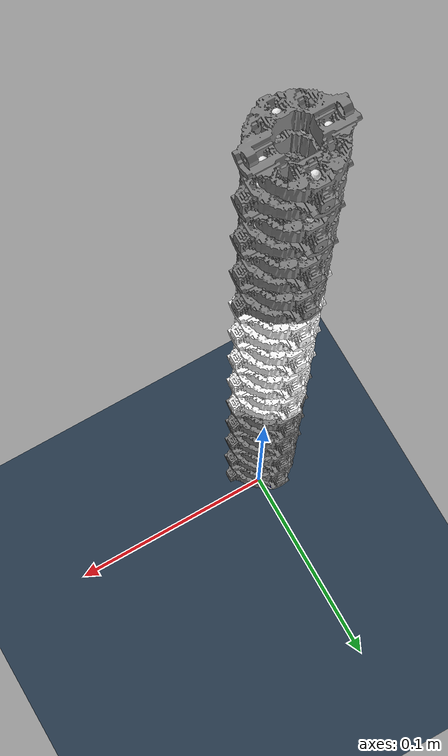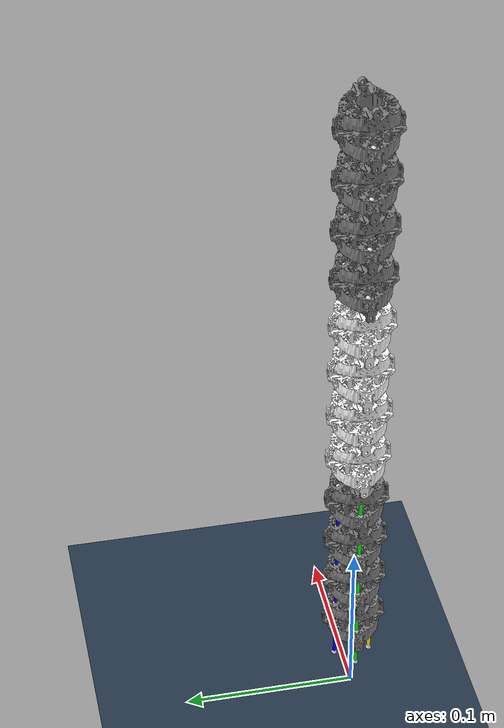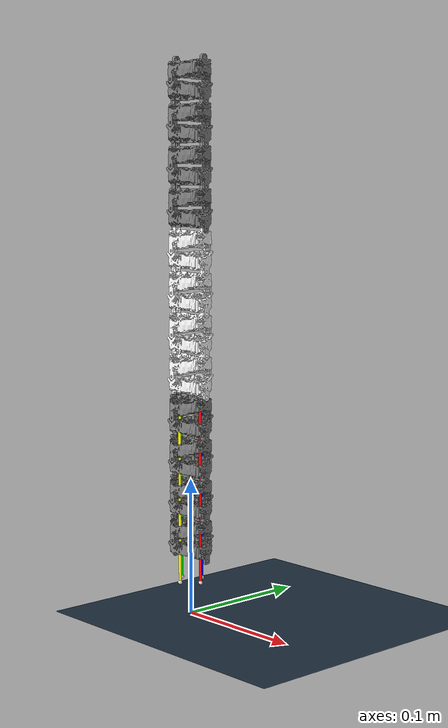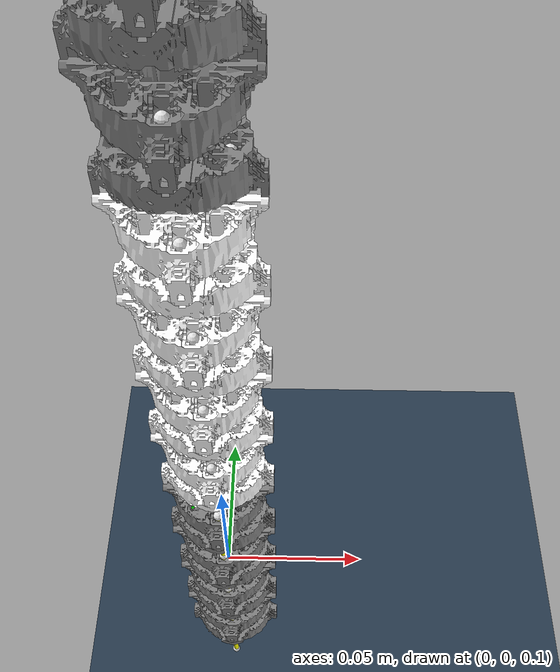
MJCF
<?xml version="1.0"?>
<mujoco model="continuum_robot">
    <compiler angle="degree" coordinate="local"/>
    <option integrator="Euler"/>

    <extension>
        <plugin plugin="mujoco.elasticity.cable"/>
    </extension>

    <compiler autolimits="true"/>

    <default>
        <joint limited="true" range="-35 35" stiffness="0.04" damping="0.01" armature="0.0001"/>
        <site rgba=".9 .9 .9 1" size="0.001625 0.001625 0.001625"/>
        <!-- STL(시각용) 공통 속성: 충돌 off -->
        <default class="comp">
            <geom contype="1" conaffinity="1"/>
        </default>
    </default>

    <asset>
        <!-- STL 로드 -->
        <mesh name="mesh_component2" file="meshes/mesh_component2.stl" scale="0.001 0.001 0.001"/>
        <!-- 환경(Plane) 로드 -->
        <texture name="texplane" type="2d" builtin="checker" rgb1=".2 .3 .4" rgb2=".1 0.15 0.2" width="512" height="512" mark="cross" markrgb=".8 .8 .8"/>
        <material name="matplane" reflectance="0.3" texture="texplane" texrepeat="1 1" texuniform="true"/>
    </asset>

    <worldbody>
        <!-- 조명 설정 -->
        <light directional="true" diffuse=".4 .4 .4" specular="0.1 0.1 0.1" pos="0 0 5.0" dir="0 0 -1" castshadow="false"/>
        <light directional="true" diffuse=".6 .6 .6" specular="0.2 0.2 0.2" pos="0 0 4" dir="0 0 -1"/>
        <!-- Plane 설정 -->
        <geom name="ground" type="plane" size="0 0 1" pos="0 0 0" quat="1 0 0 0" material="matplane" condim="1"/>

        <body name="base" pos="0 0 0">
            <joint name="base_slide" type="slide" axis="0 0 1" range="-0.01 0.01"/>
            <geom type="sphere" size="0.001" density="1000" rgba="0 0 0 0" contype="0" conaffinity="0"/>
            <site name="anchor_1" pos=" 0.0105  0      0.025"/>
            <site name="anchor_2" pos="-0.0105  0      0.025"/>
            <site name="anchor_3" pos=" 0       0.0105 0.025"/>
            <site name="anchor_4" pos=" 0      -0.0105 0.025"/>
        </body>

    <!-- ===================== Segment 1 ===================== -->
        <body name="comp_root" pos="0 0 0.05" quat="1 0 0 0">
            <geom name="geom_comp_root" class="comp" type="mesh" mesh="mesh_component2" pos="0 0 0"/>
            <joint name="rotation_root" type="hinge" axis="1 0 0" pos="0.01794 0 -0.0075"/>
            <site name="s1_1" pos="0.0105 0 0"/>
            <site name="s1_2" pos="-0.0105 0 0"/>
            <site name="s1_3" pos="0 0.0105 0"/>
            <site name="s1_4" pos="0 -0.0105 0"/>

            <body name="comp_1" pos="0 0 0.015" quat="0.70710678 0 0 -0.70710678">
                <joint name="rotation_1" type="hinge" axis="1 0 0" pos="0.01794 0 -0.0075"/>
                <!--joint axis: 이 조인트가 어느 방향으로 움직이는지, pos: 조인트의 앵커(회전/이동이 일어나는 점) 위치-->
                <geom name="geom_comp_1" class="comp" type="mesh" mesh="mesh_component2" pos="0 0 0" quat="1 0 0 0"/>
                <site name="s2_1" pos="0.0105 0 0"/>
                <site name="s2_2" pos="-0.0105 0 0"/>
                <site name="s2_3" pos="0 0.0105 0"/>
                <site name="s2_4" pos="0 -0.0105 0"/>

                <body name="comp_2" pos="0 0 0.015" quat="0.70710678 0 0 0.70710678">
                    <joint name="rotation_2" type="hinge" axis="1 0 0" pos="0.01794 0 -0.0075"/>
                    <geom name="geom_comp_2" class="comp" type="mesh" mesh="mesh_component2" pos="0 0 0" quat="1 0 0 0"/>
                    <site name="s3_1" pos="0.0105 0 0"/>
                    <site name="s3_2" pos="-0.0105 0 0"/>
                    <site name="s3_3" pos="0 0.0105 0"/>
                    <site name="s3_4" pos="0 -0.0105 0"/>

                    <body name="comp_3" pos="0 0 0.015" quat="0.70710678 0 0 -0.70710678">
                        <joint name="rotation_3" type="hinge" axis="1 0 0" pos="0.01794 0 -0.0075"/>
                        <geom name="geom_comp_3" class="comp" type="mesh" mesh="mesh_component2" pos="0 0 0" quat="1 0 0 0"/>
                        <site name="s4_1" pos="0.0105 0 0"/>
                        <site name="s4_2" pos="-0.0105 0 0"/>
                        <site name="s4_3" pos="0 0.0105 0"/>
                        <site name="s4_4" pos="0 -0.0105 0"/>

                        <body name="comp_4" pos="0 0 0.015" quat="0.70710678 0 0 0.70710678">
                            <joint name="rotation_4" type="hinge" axis="1 0 0" pos="0.01794 0 -0.0075"/>
                            <geom name="geom_comp_4" class="comp" type="mesh" mesh="mesh_component2" pos="0 0 0" quat="1 0 0 0"/>
                            <site name="s5_1" pos="0.0105 0 0"/>
                            <site name="s5_2" pos="-0.0105 0 0"/>
                            <site name="s5_3" pos="0 0.0105 0"/>
                            <site name="s5_4" pos="0 -0.0105 0"/>

                            <body name="comp_5" pos="0 0 0.015" quat="0.70710678 0 0 -0.70710678">
                                <joint name="rotation_5" type="hinge" axis="1 0 0" pos="0.01794 0 -0.0075"/>
                                <geom name="geom_comp_5" class="comp" type="mesh" mesh="mesh_component2" pos="0 0 0" quat="1 0 0 0"/>
                                <site name="s6_1" pos="0.0105 0 0"/>
                                <site name="s6_2" pos="-0.0105 0 0"/>
                                <site name="s6_3" pos="0 0.0105 0"/>
                                <site name="s6_4" pos="0 -0.0105 0"/>

                                <body name="comp_6" pos="0 0 0.015" quat="0.70710678 0 0 0.70710678">
                                    <joint name="rotation_6" type="hinge" axis="1 0 0" pos="0.01794 0 -0.0075"/>
                                    <geom name="geom_comp_6" class="comp" type="mesh" mesh="mesh_component2" pos="0 0 0" quat="1 0 0 0"/>
                                    <site name="s7_1" pos="0.0105 0 0"/>
                                    <site name="s7_2" pos="-0.0105 0 0"/>
                                    <site name="s7_3" pos="0 0.0105 0"/>
                                    <site name="s7_4" pos="0 -0.0105 0"/>

                                    <body name="comp_7" pos="0 0 0.015" quat="0.70710678 0 0 -0.70710678">
                                        <joint name="rotation_7" type="hinge" axis="1 0 0" pos="0.01794 0 -0.0075"/>
                                        <geom name="geom_comp_7" class="comp" type="mesh" mesh="mesh_component2" pos="0 0 0" quat="1 0 0 0"/>
                                        <site name="s8_1" pos="0.0105 0 0"/>
                                        <site name="s8_2" pos="-0.0105 0 0"/>
                                        <site name="s8_3" pos="0 0.0105 0"/>
                                        <site name="s8_4" pos="0 -0.0105 0"/>
                                        <site name="seg1_imu" pos="0 0 0"/>
                                    <!-- =============================== Segment 2 =============================== -->
                                        <body name="seg2_1" pos="0 0 0.015" quat="0.70710678 0 0 -0.70710678">
                                            <geom name="seg2_comp_1" class="comp" type="mesh" mesh="mesh_component2" pos="0 0 0" quat="1 0 0 0" rgba="1 1 1 1"/>
                                            <joint name="seg2_rotation_1" type="hinge" axis="1 0 0" pos="0.01794 0 -0.0075"/>
                                            <site name="2s1_1" pos="0.0105 0 0"/>
                                            <site name="2s1_2" pos="-0.0105 0 0"/>
                                            <site name="2s1_3" pos="0 0.0105 0"/>
                                            <site name="2s1_4" pos="0 -0.0105 0"/>

                                            <body name="seg2_2" pos="0 0 0.015" quat="0.70710678 0 0 0.70710678">
                                                <geom name="seg2_comp_2" class="comp" type="mesh" mesh="mesh_component2" pos="0 0 0" quat="1 0 0 0" rgba="1 1 1 1"/>
                                                <joint name="seg2_rotation_2" type="hinge" axis="1 0 0" pos="0.01794 0 -0.0075"/>
                                                <site name="2s2_1" pos="0.0105 0 0"/>
                                                <site name="2s2_2" pos="-0.0105 0 0"/>
                                                <site name="2s2_3" pos="0 0.0105 0"/>
                                                <site name="2s2_4" pos="0 -0.0105 0"/>

                                                <body name="seg2_3" pos="0 0 0.015" quat="0.70710678 0 0 -0.70710678">
                                                    <geom name="seg2_comp_3" class="comp" type="mesh" mesh="mesh_component2" pos="0 0 0" quat="1 0 0 0" rgba="1 1 1 1"/>
                                                    <joint name="seg2_rotation_3" type="hinge" axis="1 0 0" pos="0.01794 0 -0.0075"/>
                                                    <site name="2s3_1" pos="0.0105 0 0"/>
                                                    <site name="2s3_2" pos="-0.0105 0 0"/>
                                                    <site name="2s3_3" pos="0 0.0105 0"/>
                                                    <site name="2s3_4" pos="0 -0.0105 0"/>

                                                    <body name="seg2_4" pos="0 0 0.015" quat="0.70710678 0 0 0.70710678">
                                                        <geom name="seg2_comp_4" class="comp" type="mesh" mesh="mesh_component2" pos="0 0 0" quat="1 0 0 0" rgba="1 1 1 1"/>
                                                        <joint name="seg2_rotation_4" type="hinge" axis="1 0 0" pos="0.01794 0 -0.0075"/>
                                                        <site name="2s4_1" pos="0.0105 0 0"/>
                                                        <site name="2s4_2" pos="-0.0105 0 0"/>
                                                        <site name="2s4_3" pos="0 0.0105 0"/>
                                                        <site name="2s4_4" pos="0 -0.0105 0"/>

                                                        <body name="seg2_5" pos="0 0 0.015" quat="0.70710678 0 0 -0.70710678">
                                                            <geom name="seg2_comp_5" class="comp" type="mesh" mesh="mesh_component2" pos="0 0 0" quat="1 0 0 0" rgba="1 1 1 1"/>
                                                            <joint name="seg2_rotation_5" type="hinge" axis="1 0 0" pos="0.01794 0 -0.0075"/>
                                                            <site name="2s5_1" pos="0.0105 0 0"/>
                                                            <site name="2s5_2" pos="-0.0105 0 0"/>
                                                            <site name="2s5_3" pos="0 0.0105 0"/>
                                                            <site name="2s5_4" pos="0 -0.0105 0"/>

                                                            <body name="seg2_6" pos="0 0 0.015" quat="0.70710678 0 0 0.70710678">
                                                                <geom name="seg2_comp_6" class="comp" type="mesh" mesh="mesh_component2" pos="0 0 0" rgba="1 1 1 1"/>
                                                                <joint name="seg2_rotation_6" type="hinge" axis="1 0 0" pos="0.01794 0 -0.0075"/>
                                                                <site name="2s6_1" pos="0.0105 0 0"/>
                                                                <site name="2s6_2" pos="-0.0105 0 0"/>
                                                                <site name="2s6_3" pos="0 0.0105 0"/>
                                                                <site name="2s6_4" pos="0 -0.0105 0"/>

                                                                <body name="seg2_7" pos="0 0 0.015" quat="0.70710678 0 0 -0.70710678">
                                                                    <geom name="seg2_comp_7" class="comp" type="mesh" mesh="mesh_component2" pos="0 0 0" quat="1 0 0 0" rgba="1 1 1 1"/>
                                                                    <joint name="seg2_rotation_7" type="hinge" axis="1 0 0" pos="0.01794 0 -0.0075"/>
                                                                    <site name="2s7_1" pos="0.0105 0 0"/>
                                                                    <site name="2s7_2" pos="-0.0105 0 0"/>
                                                                    <site name="2s7_3" pos="0 0.0105 0"/>
                                                                    <site name="2s7_4" pos="0 -0.0105 0"/>

                                                                    <body name="seg2_8" pos="0 0 0.015" quat="0.70710678 0 0 0.70710678">
                                                                        <geom name="seg2_comp_8" class="comp" type="mesh" mesh="mesh_component2" pos="0 0 0" rgba="1 1 1 1"/>
                                                                        <joint name="seg2_rotation_8" type="hinge" axis="1 0 0" pos="0.01794 0 -0.0075"/>
                                                                        <site name="2s8_1" pos="0.0105 0 0"/>
                                                                        <site name="2s8_2" pos="-0.0105 0 0"/>
                                                                        <site name="2s8_3" pos="0 0.0105 0"/>
                                                                        <site name="2s8_4" pos="0 -0.0105 0"/>

                                                                    <!-- ===================== Segment 3 ===================== -->
                                                                        <body name="seg3_1" pos="0 0 0.015" quat="0.70710678 0 0 -0.70710678">
                                                                            <geom name="seg3_comp_1" class="comp" type="mesh" mesh="mesh_component2" pos="0 0 0" quat="1 0 0 0"/>
                                                                            <joint name="seg3_rotation_1" type="hinge" axis="1 0 0" pos="0.01794 0 -0.0075"/>
                                                                            <site name="3s1_1" pos="0.0105 0 0"/>
                                                                            <site name="3s1_2" pos="-0.0105 0 0"/>
                                                                            <site name="3s1_3" pos="0 0.0105 0"/>
                                                                            <site name="3s1_4" pos="0 -0.0105 0"/>

                                                                            <body name="seg3_2" pos="0 0 0.015" quat="0.70710678 0 0 0.70710678">
                                                                                <geom name="seg3_comp_2" class="comp" type="mesh" mesh="mesh_component2" pos="0 0 0" quat="1 0 0 0"/>
                                                                                <joint name="seg3_rotation_2" type="hinge" axis="1 0 0" pos="0.01794 0 -0.0075"/>
                                                                                <site name="3s2_1" pos="0.0105 0 0"/>
                                                                                <site name="3s2_2" pos="-0.0105 0 0"/>
                                                                                <site name="3s2_3" pos="0 0.0105 0"/>
                                                                                <site name="3s2_4" pos="0 -0.0105 0"/>

                                                                                <body name="seg3_3" pos="0 0 0.015" quat="0.70710678 0 0 -0.70710678">
                                                                                    <geom name="seg3_comp_3" class="comp" type="mesh" mesh="mesh_component2" pos="0 0 0" quat="1 0 0 0"/>
                                                                                    <joint name="seg3_rotation_3" type="hinge" axis="1 0 0" pos="0.01794 0 -0.0075"/>
                                                                                    <site name="3s3_1" pos="0.0105 0 0"/>
                                                                                    <site name="3s3_2" pos="-0.0105 0 0"/>
                                                                                    <site name="3s3_3" pos="0 0.0105 0"/>
                                                                                    <site name="3s3_4" pos="0 -0.0105 0"/>

                                                                                    <body name="seg3_4" pos="0 0 0.015" quat="0.70710678 0 0 0.70710678">
                                                                                        <geom name="seg3_comp_4" class="comp" type="mesh" mesh="mesh_component2" pos="0 0 0" quat="1 0 0 0"/>
                                                                                        <joint name="seg3_rotation_4" type="hinge" axis="1 0 0" pos="0.01794 0 -0.0075"/>
                                                                                        <site name="3s4_1" pos="0.0105 0 0"/>
                                                                                        <site name="3s4_2" pos="-0.0105 0 0"/>
                                                                                        <site name="3s4_3" pos="0 0.0105 0"/>
                                                                                        <site name="3s4_4" pos="0 -0.0105 0"/>

                                                                                        <body name="seg3_5" pos="0 0 0.015" quat="0.70710678 0 0 -0.70710678">
                                                                                            <geom name="seg3_comp_5" class="comp" type="mesh" mesh="mesh_component2" pos="0 0 0" quat="1 0 0 0"/>
                                                                                            <joint name="seg3_rotation_5" type="hinge" axis="1 0 0" pos="0.01794 0 -0.0075"/>
                                                                                            <site name="3s5_1" pos="0.0105 0 0"/>
                                                                                            <site name="3s5_2" pos="-0.0105 0 0"/>
                                                                                            <site name="3s5_3" pos="0 0.0105 0"/>
                                                                                            <site name="3s5_4" pos="0 -0.0105 0"/>

                                                                                            <body name="seg3_6" pos="0 0 0.015" quat="0.70710678 0 0 0.70710678">
                                                                                                <geom name="seg3_comp_6" class="comp" type="mesh" mesh="mesh_component2" pos="0 0 0"/>
                                                                                                <joint name="seg3_rotation_6" type="hinge" axis="1 0 0" pos="0.01794 0 -0.0075"/>
                                                                                                <site name="3s6_1" pos="0.0105 0 0"/>
                                                                                                <site name="3s6_2" pos="-0.0105 0 0"/>
                                                                                                <site name="3s6_3" pos="0 0.0105 0"/>
                                                                                                <site name="3s6_4" pos="0 -0.0105 0"/>

                                                                                                <body name="seg3_7" pos="0 0 0.015" quat="0.70710678 0 0 -0.70710678">
                                                                                                    <geom name="seg3_comp_7" class="comp" type="mesh" mesh="mesh_component2" pos="0 0 0" quat="1 0 0 0"/>
                                                                                                    <joint name="seg3_rotation_7" type="hinge" axis="1 0 0" pos="0.01794 0 -0.0075"/>
                                                                                                    <site name="3s7_1" pos="0.0105 0 0"/>
                                                                                                    <site name="3s7_2" pos="-0.0105 0 0"/>
                                                                                                    <site name="3s7_3" pos="0 0.0105 0"/>
                                                                                                    <site name="3s7_4" pos="0 -0.0105 0"/>

                                                                                                    <body name="seg3_8" pos="0 0 0.015" quat="0.70710678 0 0 0.70710678">
                                                                                                        <geom name="seg3_comp_8" class="comp" type="mesh" mesh="mesh_component2" pos="0 0 0"/>
                                                                                                        <joint name="seg3_rotation_8" type="hinge" axis="1 0 0" pos="0.01794 0 -0.0075"/>
                                                                                                        <site name="3s8_1" pos="0.0105 0 0"/>
                                                                                                        <site name="3s8_2" pos="-0.0105 0 0"/>
                                                                                                        <site name="3s8_3" pos="0 0.0105 0"/>
                                                                                                        <site name="3s8_4" pos="0 -0.0105 0"/>
                                                                                                    </body>
                                                                                                </body>
                                                                                            </body>
                                                                                        </body>
                                                                                    </body>
                                                                                </body>
                                                                            </body>
                                                                        </body>
                                                                    </body>
                                                                </body>
                                                            </body>
                                                        </body>
                                                    </body>
                                                </body>
                                            </body>
                                        </body>
                                    </body>
                                </body>
                            </body>
                        </body>
                    </body>
                </body>
            </body>
        </body>
    </worldbody>

    <tendon>
        <!-- ===================== Segment 1 ===================== -->
        <spatial name="tendon_1" width="0.0010" rgba="1 0 0 1" limited="true" range="0.0109 0.0111">
            <site site="anchor_1"/>
            <site site="s1_1"/>
            <site site="s2_3"/>
            <site site="s3_1"/>
            <site site="s4_3"/>
            <site site="s5_1"/>
            <site site="s6_3"/>
            <site site="s7_1"/>
            <site site="s8_3"/>
        </spatial>
        <spatial name="tendon_2" width="0.0010" rgba="0 1 0 1" limited="true" range="0.0109 0.0111">
            <site site="anchor_2"/>
            <site site="s1_2"/>
            <site site="s2_4"/>
            <site site="s3_2"/>
            <site site="s4_4"/>
            <site site="s5_2"/>
            <site site="s6_4"/>
            <site site="s7_2"/>
            <site site="s8_4"/>
        </spatial>
        <spatial name="tendon_3" width="0.0010" rgba="0 0 1 1" limited="true" range="0.0109 0.0111">
            <site site="anchor_3"/>
            <site site="s1_3"/>
            <site site="s2_2"/>
            <site site="s3_3"/>
            <site site="s4_2"/>
            <site site="s5_3"/>
            <site site="s6_2"/>
            <site site="s7_3"/>
            <site site="s8_2"/>
        </spatial>
        <spatial name="tendon_4" width="0.0010" rgba="1 1 0 1" limited="true" range="0.0109 0.0111">
            <site site="anchor_4"/>
            <site site="s1_4"/>
            <site site="s2_1"/>
            <site site="s3_4"/>
            <site site="s4_1"/>
            <site site="s5_4"/>
            <site site="s6_1"/>
            <site site="s7_4"/>
            <site site="s8_1"/>
        </spatial>

    </tendon>
    <actuator>
        <!-- tendon_1 에 장력 주는 모터 -->
        <motor name="cable_red" tendon="tendon_1"
            ctrllimited="true" ctrlrange="-5 5"/>

        <motor name="cable_green" tendon="tendon_2"
            ctrllimited="true" ctrlrange="-5 5"/>

        <motor name="cable_blue" tendon="tendon_3"
            ctrllimited="true" ctrlrange="-5 5"/>

        <motor name="cable_yellow" tendon="tendon_4"
            ctrllimited="true" ctrlrange="-5 5"/>
    </actuator>

    <sensor>
        <framequat name="imu_quat_seg1" objtype="site" objname="seg1_imu"/>
        <gyro name="imu_gyro_seg1" site="seg1_imu"/>
        <accelerometer name="imu_acc_seg1" site="seg1_imu"/>

    </sensor>

</mujoco>

        <!-- ===================== Segment 3 ===================== -->
